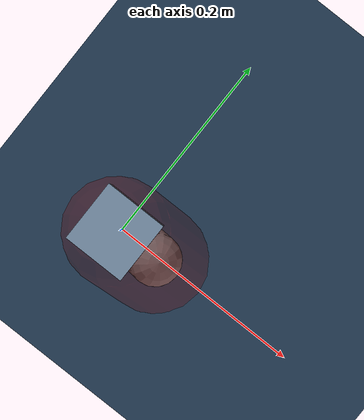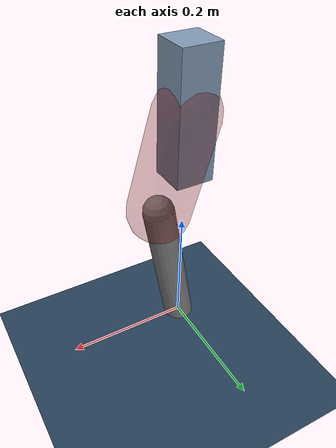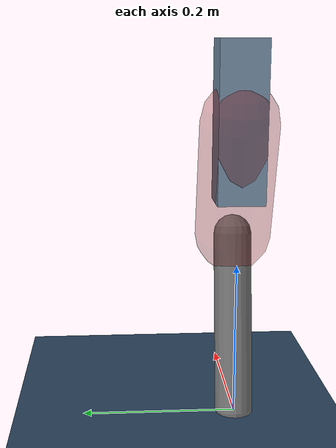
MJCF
<mujoco model="Hopper2D">
	<compiler inertiafromgeom="true" angle="radian" />
	<option timestep="0.001" integrator="implicit" cone="elliptic" solver="Newton" tolerance="1e-10" />

	<default>
		<geom contype="1" conaffinity="1" condim="3" friction="2 0.005 0.0001" solref="0.005 1" />
		<joint limited="true" damping="0.1" />
	</default>

	<asset>
		<texture name="skybox" type="skybox" builtin="gradient" rgb1=".4 .6 .8" rgb2="0 0 0" width="800" height="800" />
		<texture name="grid" type="2d" builtin="checker" rgb1=".1 .2 .3" rgb2=".2 .3 .4" width="300" height="300" mark="edge" markrgb=".2 .3 .4" />
		<material name="ground" texture="grid" texrepeat="1 1" texuniform="true" reflectance="0.1" />
		<material name="leg" rgba="0.5 0.6 0.7 1" />
	</asset>

	<worldbody>

		<geom name="floor" type="plane" size="5 5 0.25" material="ground" />

		<light directional="false" diffuse="0.8 0.8 0.8" specular="0.3 0.3 0.3" pos="0 0 2" dir="0 0 -1" />
		<light mode="targetbodycom" target="base" directional="false" diffuse="0.8 0.8 0.8" specular="0.3 0.3 0.3" pos="0 0 2" dir="0 0 -1" />

		<camera name="fixed" pos="0 -2 1" xyaxes="1 0 0 0 0 1" />
		<camera name="tracking" mode="trackcom" pos="0 -3 1" />

		<body name="root" pos="0 0 0.38421990489675506">
			<joint name="slide_x" type="slide" axis="1 0 0" range="-100 100" />
			<joint name="slide_z" type="slide" axis="0 0 1" range="0 10" />

			<body name="base" pos="0 0 0">
				<geom name="torso" type="box" size="0.03 0.03 0.1" mass="2.356" material="leg" />

				<body name="link1" pos="0 0 0" euler="0 1.2919288453212165 0">
					<joint type="hinge" axis="0 -1 0" pos="0 0 0" name="hinge1" limited="true" range="-3.14 3.14" stiffness="0" damping="0.1" />
					<geom name="thigh" type="capsule" fromto="0 0 0 0.15667021979985205 0 0" size="0.05" rgba="0.5 0 0 0.3" mass="0.6243085275196449" />

					<body name="link2" pos="0.15667021979985205 0 0" euler="0 0.46142563933354097 0">
						<joint type="hinge" axis="0 -1 0" pos="0 0 0" name="hinge2" limited="true" range="-3.14 3.14" stiffness="0" damping="0.1" />
						<geom name="shank" type="capsule" fromto="0 0 0 0.23754968509690302 0 0" size="0.025" mass="0.4322397480775224" />

					</body>
				</body>
			</body>
		</body>
	</worldbody>

	<actuator>
		<motor name="torque1" joint="hinge1" ctrlrange="-85.15793878080746 85.15793878080746" ctrllimited="true" gear="1" />
		<motor name="torque2" joint="hinge2" ctrlrange="-29.054839361077107 29.054839361077107" ctrllimited="true" gear="1" />
	</actuator>
</mujoco>
